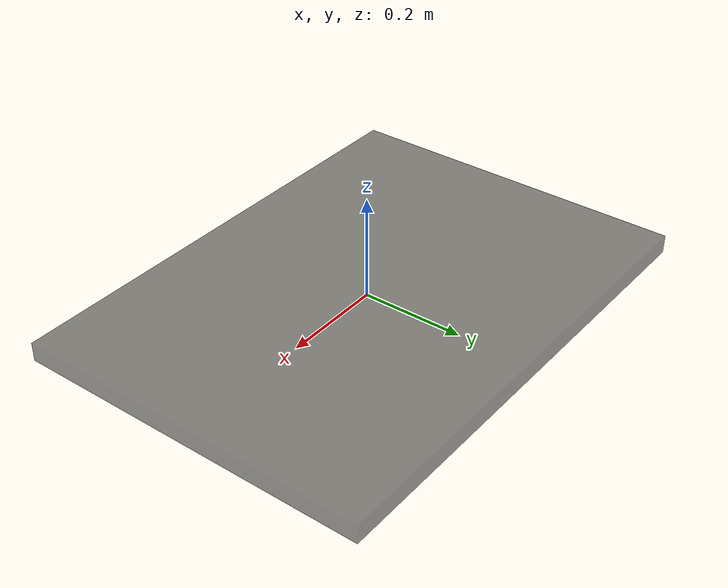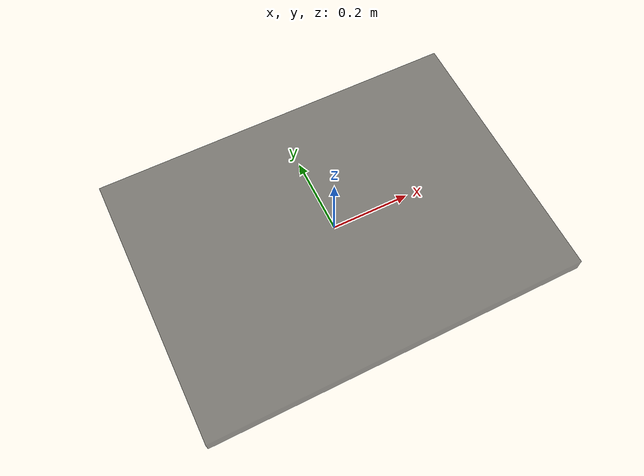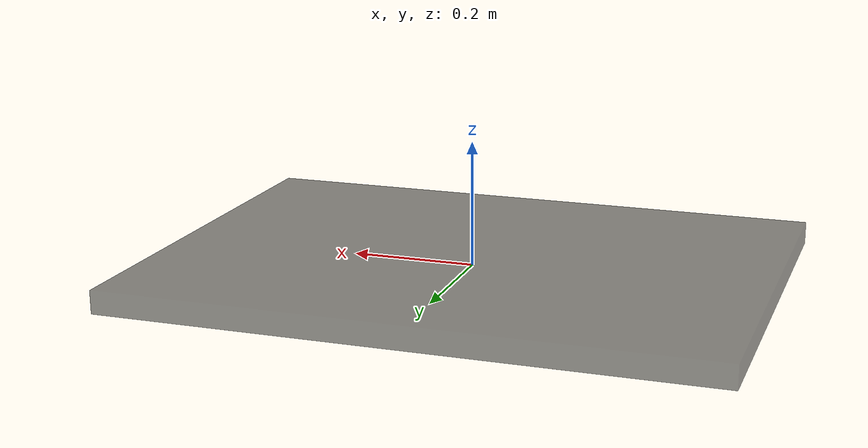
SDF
<?xml version="1.0"?>
<sdf version='1.6'>
<model name="plane">
  <link name="base_link">
    <visual name='plane_visual'>
      <pose frame=''>0 0 0 0 0 0</pose>
      <geometry>
        <box>
          <size>0.96 0.701 0.037</size>
        </box>
      </geometry>
      <material>
        <diffuse>0 0 0 0.5</diffuse>
      </material>
    </visual>

    <collision name='plane_collision'>
      <pose frame=''>0 0 0 0 0 0</pose>
      <geometry>
        <box>
          <size>0.96 0.701 0.037</size>
        </box>
      </geometry>
    </collision>

   </link>
</model>
</sdf>
